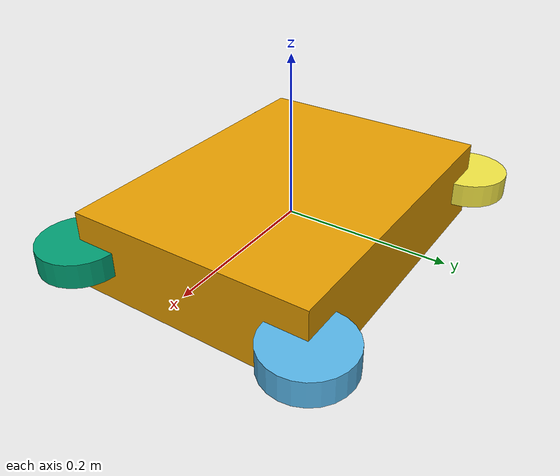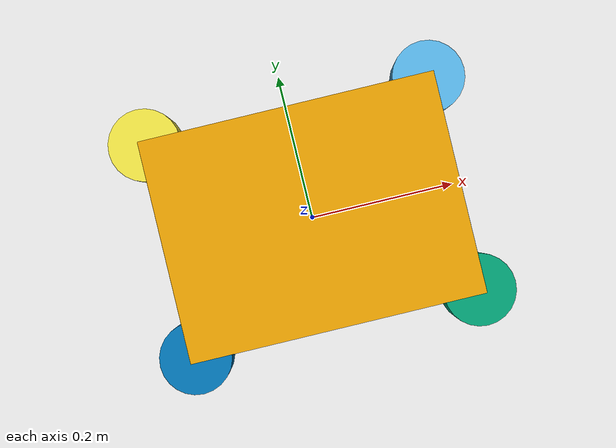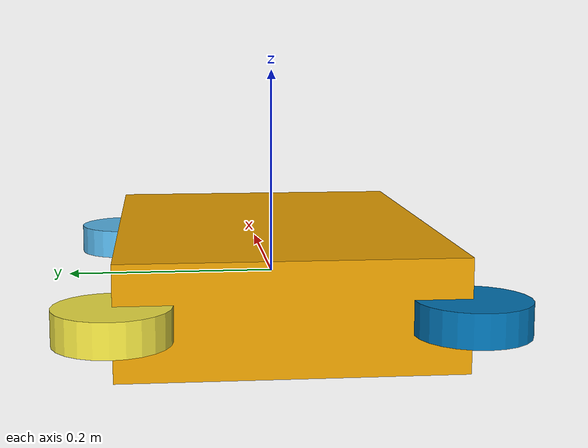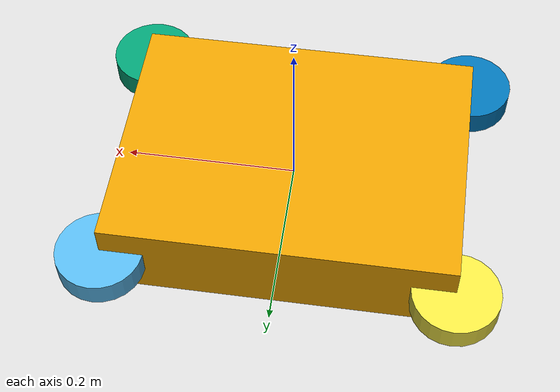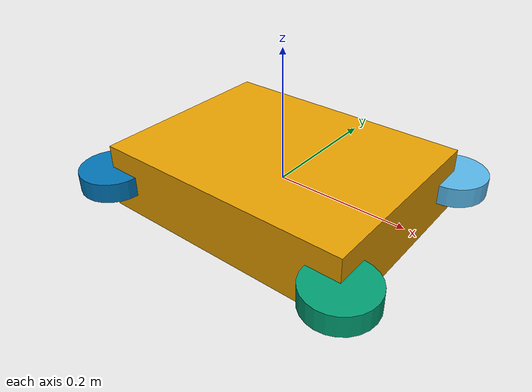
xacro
<?xml version="1.0"?>

<robot xmlns:xacro="http://ros.org/wiki/xacro" name="four_wheel_robot">

  <!-- Define properties -->
  <xacro:property name="wheelbase" value="0.4"/>
  <xacro:property name="track" value="0.3"/>
  <xacro:property name="wheel_radius" value="0.05"/>

  <!-- Define macros for wheel -->
  <xacro:macro name="wheel_link" params="name">
    <visual>
      <origin xyz="0 0 0" rpy="0 0 0"/>
      <geometry>
        <cylinder radius="${wheel_radius}" length="0.03"/>
      </geometry>
    </visual>
    <collision>
      <origin xyz="0 0 0" rpy="0 0 0"/>
      <geometry>
        <cylinder radius="${wheel_radius}" length="0.03"/>
      </geometry>
    </collision>
  </xacro:macro>

  <!-- Robot model -->
  <link name="base_link">
    <visual>
      <origin xyz="0 0 0" rpy="0 0 0"/>
      <geometry>
        <box size="${wheelbase} ${track} 0.1"/>
      </geometry>
    </visual>
  </link>

  <!-- Front left wheel -->
  <joint name="joint_front_left_wheel" type="continuous">
    <origin xyz="${wheelbase/2} ${track/2} 0"/>
    <parent link="base_link"/>
    <child link="front_left_wheel"/>
    <axis xyz="0 0 1"/>
  </joint>
  <link name="front_left_wheel">
    <xacro:wheel_link name="front_left_wheel_visual"/>
  </link>

  <!-- Front right wheel -->
  <joint name="joint_front_right_wheel" type="continuous">
    <origin xyz="${wheelbase/2} -${track/2} 0"/>
    <parent link="base_link"/>
    <child link="front_right_wheel"/>
    <axis xyz="0 0 1"/>
  </joint>
  <link name="front_right_wheel">
    <xacro:wheel_link name="front_right_wheel_visual"/>
  </link>

  <!-- Rear left wheel -->
  <joint name="joint_rear_left_wheel" type="continuous">
    <origin xyz="-${wheelbase/2} ${track/2} 0"/>
    <parent link="base_link"/>
    <child link="rear_left_wheel"/>
    <axis xyz="0 0 1"/>
  </joint>
  <link name="rear_left_wheel">
    <xacro:wheel_link name="rear_left_wheel_visual"/>
  </link>

  <!-- Rear right wheel -->
  <joint name="joint_rear_right_wheel" type="continuous">
    <origin xyz="-${wheelbase/2} -${track/2} 0"/>
    <parent link="base_link"/>
    <child link="rear_right_wheel"/>
    <axis xyz="0 0 1"/>
  </joint>
  <link name="rear_right_wheel">
    <xacro:wheel_link name="rear_right_wheel_visual"/>
  </link>

</robot>
